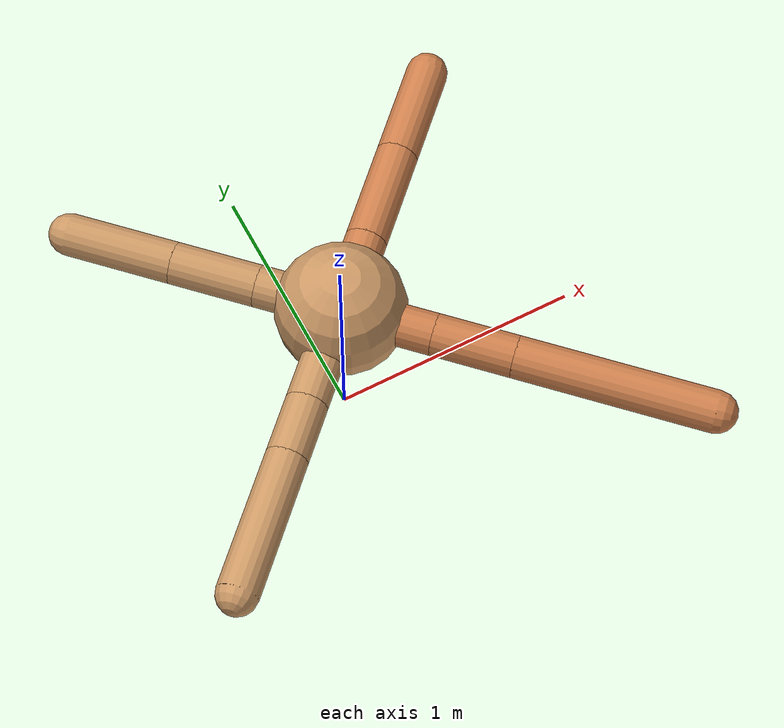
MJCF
<mujoco model="ant">
  <compiler angle="degree" coordinate="local" inertiafromgeom="true" />
  <option integrator="RK4" timestep="0.01" />
  <custom>
    <numeric data="0.0 0.0 0.55 1.0 0.0 0.0 0.0 0.0 1.0 0.0 -1.0 0.0 -1.0 0.0 1.0" name="init_qpos" />
  </custom>
  <default>
    <joint armature="1" damping="1" limited="true" />
    <geom conaffinity="0" condim="3" density="5.0" friction="1.5 0.1 0.1" margin="0.01" rgba="0.8 0.6 0.4 1" />
  </default>
  <worldbody>
    <body name="torso" pos="0 0 0.75">
      <geom name="torso_geom" pos="0 0 0" size="0.25" type="sphere" />

      <body name="front_left_leg" pos="0 0 0">
        <geom fromto="0.0 0.0 0.0 0.21565111780996765 0.21565111780996765 0.0" name="aux_1_geom" size="0.08" type="capsule" rgba=".8 .5 .3 1" />
        <body name="aux_1" pos="0.21565111780996765 0.21565111780996765 0.0">
          <joint axis="0 0 1" name="hip_1" pos="0.0 0.0 0.0" range="-40 40" type="hinge" />
          <geom fromto="0.0 0.0 0.0 0.27782721153471557 0.27782721153471557 0.0" name="left_leg_geom" size="0.08" type="capsule" rgba=".8 .5 .3 1" />
          <body pos="0.27782721153471557 0.27782721153471557 0.0" name="front_left_foot">
            <joint axis="-1 1 0" name="ankle_1" pos="0.0 0.0 0.0" range="30 100" type="hinge" />
            <geom fromto="0.0 0.0 0.0 0.27608273364140357 0.27608273364140357 0.0" name="left_ankle_geom" size="0.08" type="capsule" rgba=".8 .5 .3 1" />
          </body>
        </body>
      </body>
      <body name="front_right_leg" pos="0 0 0">
        <geom fromto="0.0 0.0 0.0 -0.22834682086088132 0.22834682086088132 0.0" name="aux_2_geom" size="0.08" type="capsule" />
        <body name="aux_2" pos="-0.22834682086088132 0.22834682086088132 0.0">
          <joint axis="0 0 1" name="hip_2" pos="0.0 0.0 0.0" range="-40 40" type="hinge" />
          <geom fromto="0.0 0.0 0.0 -0.23332361022813766 0.23332361022813766 0.0" name="right_leg_geom" size="0.08" type="capsule" />
          <body pos="-0.23332361022813766 0.23332361022813766 0.0" name="front_right_foot">
            <joint axis="1 1 0" name="ankle_2" pos="0.0 0.0 0.0" range="-100 -30" type="hinge" />
            <geom fromto="0.0 0.0 0.0 -0.2927423638072468 0.2927423638072468 0.0" name="right_ankle_geom" size="0.08" type="capsule" />
          </body>
        </body>
      </body>
      <body name="left_back_leg" pos="0 0 0">
        <geom fromto="0.0 0.0 0.0 -0.28772275960725635 -0.28772275960725635 0.0" name="aux_3_geom" size="0.08" type="capsule" />
        <body name="aux_3" pos="-0.28772275960725635 -0.28772275960725635 0.0">
          <joint axis="0 0 1" name="hip_3" pos="0.0 0.0 0.0" range="-40 40" type="hinge" />
          <geom fromto="0.0 0.0 0.0 -0.160678733389853 -0.160678733389853 0.0" name="back_leg_geom" size="0.08" type="capsule" />
          <body pos="-0.160678733389853 -0.160678733389853 0.0" name="left_back_foot">
            <joint axis="-1 1 0" name="ankle_3" pos="0.0 0.0 0.0" range="-100 -30" type="hinge" />
            <geom fromto="0.0 0.0 0.0 -0.3894318029813102 -0.3894318029813102 0.0" name="third_ankle_geom" size="0.08" type="capsule" />
          </body>
        </body>
      </body>
      <body name="right_back_leg" pos="0 0 0">
        <geom fromto="0.0 0.0 0.0 0.25420543021064257 -0.25420543021064257 0.0" name="aux_4_geom" size="0.08" type="capsule" rgba=".8 .5 .3 1" />
        <body name="aux_4" pos="0.25420543021064257 -0.25420543021064257 0.0">
          <joint axis="0 0 1" name="hip_4" pos="0.0 0.0 0.0" range="-40 40" type="hinge" />
          <geom fromto="0.0 0.0 0.0 0.21843310184617667 -0.21843310184617667 0.0" name="rightback_leg_geom" size="0.08" type="capsule" rgba=".8 .5 .3 1" />
          <body pos="0.21843310184617667 -0.21843310184617667 0.0" name="right_back_foot">
            <joint axis="1 1 0" name="ankle_4" pos="0.0 0.0 0.0" range="30 100" type="hinge" />
            <geom fromto="0.0 0.0 0.0 0.5341022660313272 -0.5341022660313272 0.0" name="fourth_ankle_geom" size="0.08" type="capsule" rgba=".8 .5 .3 1" />
          </body>
        </body>
      </body>
    </body>
  </worldbody>
  <actuator>
    <motor ctrllimited="true" ctrlrange="-1.0 1.0" joint="hip_4" gear="150" />
    <motor ctrllimited="true" ctrlrange="-1.0 1.0" joint="ankle_4" gear="150" />
    <motor ctrllimited="true" ctrlrange="-1.0 1.0" joint="hip_1" gear="150" />
    <motor ctrllimited="true" ctrlrange="-1.0 1.0" joint="ankle_1" gear="150" />
    <motor ctrllimited="true" ctrlrange="-1.0 1.0" joint="hip_2" gear="150" />
    <motor ctrllimited="true" ctrlrange="-1.0 1.0" joint="ankle_2" gear="150" />
    <motor ctrllimited="true" ctrlrange="-1.0 1.0" joint="hip_3" gear="150" />
    <motor ctrllimited="true" ctrlrange="-1.0 1.0" joint="ankle_3" gear="150" />
  </actuator>
</mujoco>
